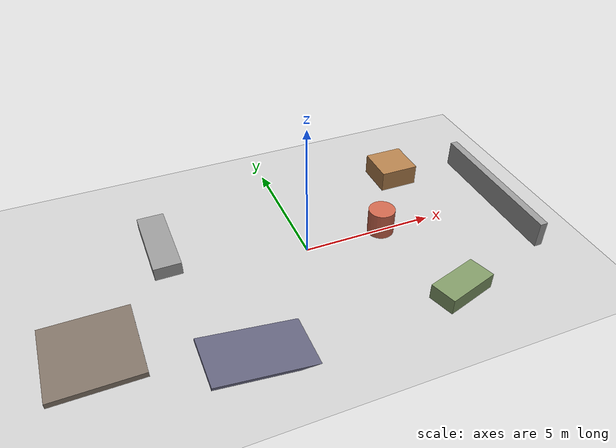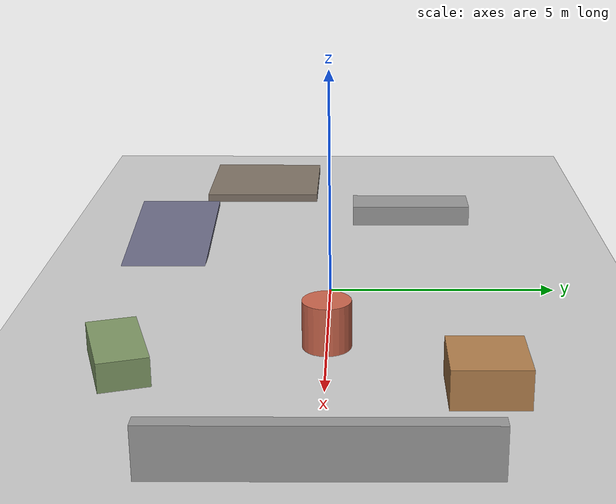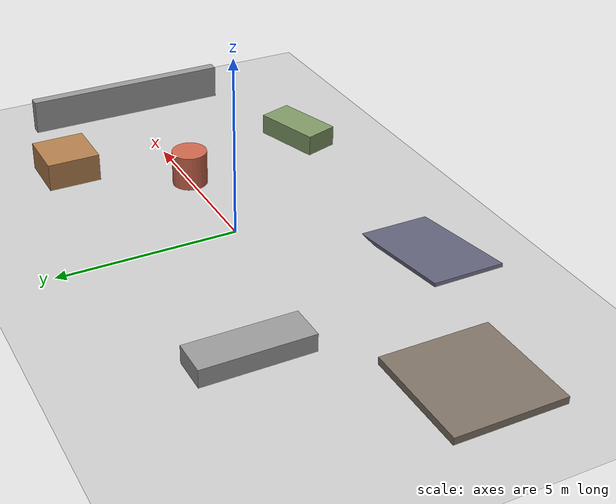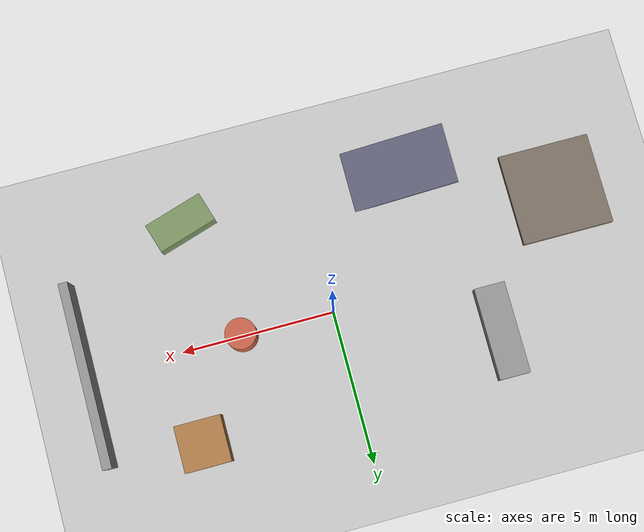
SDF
<?xml version="1.0"?>
<sdf version="1.6">
  <world name="outdoor_world">

    <include>
      <uri>model://ground_plane</uri>
    </include>

    <include>
      <uri>model://sun</uri>
    </include>

    <physics type="ode">
      <max_step_size>0.002</max_step_size>
      <real_time_factor>1.0</real_time_factor>
      <real_time_update_rate>500</real_time_update_rate>
    </physics>

    <scene>
      <ambient>0.6 0.6 0.6 1.0</ambient>
      <background>0.7 0.85 1.0 1.0</background>
      <shadows>true</shadows>
    </scene>

    <!-- Obstacles for navigation testing -->

    <model name="wall_1">
      <static>true</static>
      <pose>8 0 0.5 0 0 0</pose>
      <link name="link">
        <collision name="collision">
          <geometry><box><size>0.3 6 1.0</size></box></geometry>
        </collision>
        <visual name="visual">
          <geometry><box><size>0.3 6 1.0</size></box></geometry>
          <material>
            <ambient>0.5 0.5 0.5 1</ambient>
            <diffuse>0.6 0.6 0.6 1</diffuse>
          </material>
        </visual>
      </link>
    </model>

    <model name="box_1">
      <static>true</static>
      <pose>5 3 0.4 0 0 0</pose>
      <link name="link">
        <collision name="collision">
          <geometry><box><size>1.5 1.5 0.8</size></box></geometry>
        </collision>
        <visual name="visual">
          <geometry><box><size>1.5 1.5 0.8</size></box></geometry>
          <material>
            <ambient>0.6 0.4 0.2 1</ambient>
            <diffuse>0.7 0.5 0.3 1</diffuse>
          </material>
        </visual>
      </link>
    </model>

    <model name="box_2">
      <static>true</static>
      <pose>4 -4 0.3 0 0 0.3</pose>
      <link name="link">
        <collision name="collision">
          <geometry><box><size>2.0 1.0 0.6</size></box></geometry>
        </collision>
        <visual name="visual">
          <geometry><box><size>2.0 1.0 0.6</size></box></geometry>
          <material>
            <ambient>0.4 0.5 0.3 1</ambient>
            <diffuse>0.5 0.6 0.4 1</diffuse>
          </material>
        </visual>
      </link>
    </model>

    <model name="box_3">
      <static>true</static>
      <pose>-5 2 0.25 0 0 0</pose>
      <link name="link">
        <collision name="collision">
          <geometry><box><size>1.0 3.0 0.5</size></box></geometry>
        </collision>
        <visual name="visual">
          <geometry><box><size>1.0 3.0 0.5</size></box></geometry>
          <material>
            <ambient>0.5 0.5 0.5 1</ambient>
            <diffuse>0.6 0.6 0.6 1</diffuse>
          </material>
        </visual>
      </link>
    </model>

    <model name="cylinder_1">
      <static>true</static>
      <pose>3 0 0.5 0 0 0</pose>
      <link name="link">
        <collision name="collision">
          <geometry><cylinder><radius>0.5</radius><length>1.0</length></cylinder></geometry>
        </collision>
        <visual name="visual">
          <geometry><cylinder><radius>0.5</radius><length>1.0</length></cylinder></geometry>
          <material>
            <ambient>0.7 0.3 0.2 1</ambient>
            <diffuse>0.8 0.4 0.3 1</diffuse>
          </material>
        </visual>
      </link>
    </model>

    <!-- Ramp for 3D navigation testing -->
    <model name="ramp">
      <static>true</static>
      <pose>-3 -4 0.15 0 0.15 0</pose>
      <link name="link">
        <collision name="collision">
          <geometry><box><size>4.0 2.0 0.1</size></box></geometry>
        </collision>
        <visual name="visual">
          <geometry><box><size>4.0 2.0 0.1</size></box></geometry>
          <material>
            <ambient>0.3 0.3 0.4 1</ambient>
            <diffuse>0.4 0.4 0.5 1</diffuse>
          </material>
        </visual>
      </link>
    </model>

    <model name="elevated_platform">
      <static>true</static>
      <pose>-8 -2 0.1 0 0 0</pose>
      <link name="link">
        <collision name="collision">
          <geometry><box><size>3.0 3.0 0.2</size></box></geometry>
        </collision>
        <visual name="visual">
          <geometry><box><size>3.0 3.0 0.2</size></box></geometry>
          <material>
            <ambient>0.4 0.35 0.3 1</ambient>
            <diffuse>0.5 0.45 0.4 1</diffuse>
          </material>
        </visual>
      </link>
    </model>

  </world>
</sdf>
